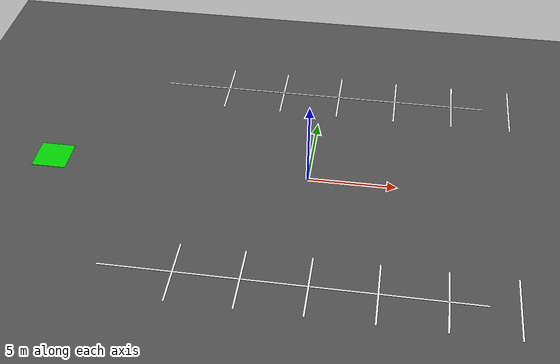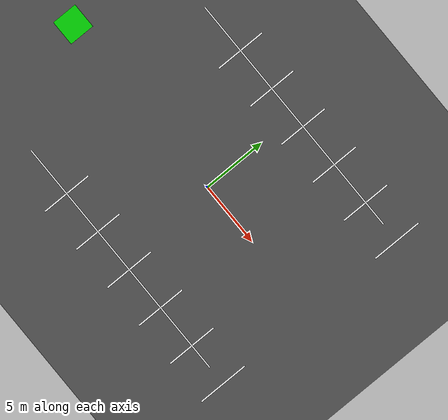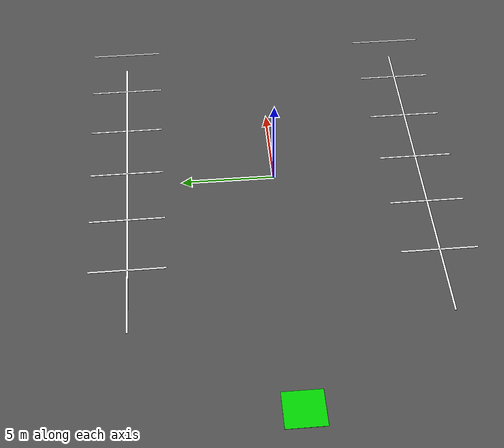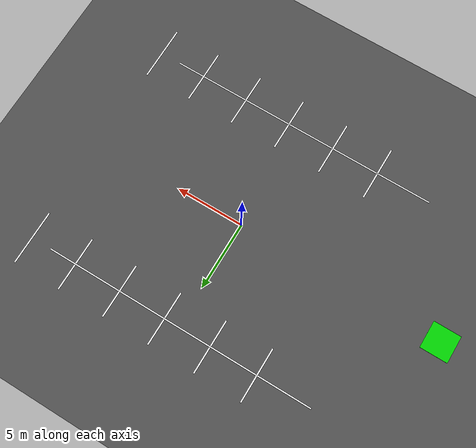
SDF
<?xml version="1.0" ?>
<sdf version="1.6">
  <world name="parking_lot_a">

    <!-- Light and physics -->
    <include>
      <uri>model://sun</uri>
    </include>

    <physics type="ode">
      <real_time_update_rate>1000</real_time_update_rate>
      <max_step_size>0.001</max_step_size>
    </physics>

    <!-- Ground plane -->
    <model name="ground_plane">
      <static>true</static>
      <link name="link">
        <collision name="collision">
          <geometry>
            <plane>
              <normal>0 0 1</normal>
              <size>40 40</size>
            </plane>
          </geometry>
          <surface>
            <friction>
              <ode>
                <mu>1.0</mu>
                <mu2>1.0</mu2>
              </ode>
            </friction>
          </surface>
        </collision>
        <visual name="visual">
          <geometry>
            <plane>
              <normal>0 0 1</normal>
              <size>40 40</size>
            </plane>
          </geometry>
          <material>
            <ambient>0.3 0.3 0.3 1</ambient>  <!-- asphalt gray -->
            <diffuse>0.3 0.3 0.3 1</diffuse>
          </material>
        </visual>
      </link>
    </model>

    <!-- Painted parking lines (white) -->
    <!-- Each bay is just a thin rectangular visual line -->
    <model name="parking_lines">
      <static>true</static>
      <link name="link">
        <!-- Horizontal lanes (white lines) -->
        <visual name="lane_line1">
          <pose>0 8 0 0 0 0</pose>
          <geometry>
            <box><size>20 0.1 0.01</size></box>
          </geometry>
          <material><diffuse>1 1 1 1</diffuse></material>
        </visual>
        <visual name="lane_line2">
          <pose>0 -8 0 0 0 0</pose>
          <geometry>
            <box><size>20 0.1 0.01</size></box>
          </geometry>
          <material><diffuse>1 1 1 1</diffuse></material>
        </visual>

        <!-- Vertical dividers (six bays per row) -->
        <!-- Top row -->
        <visual name="divider_A1"><pose>-6 8 0 0 0 0</pose><geometry><box><size>0.1 4 0.01</size></box></geometry><material><diffuse>1 1 1 1</diffuse></material></visual>
        <visual name="divider_A2"><pose>-2.5 8 0 0 0 0</pose><geometry><box><size>0.1 4 0.01</size></box></geometry><material><diffuse>1 1 1 1</diffuse></material></visual>
        <visual name="divider_A3"><pose>1 8 0 0 0 0</pose><geometry><box><size>0.1 4 0.01</size></box></geometry><material><diffuse>1 1 1 1</diffuse></material></visual>
        <visual name="divider_A4"><pose>4.5 8 0 0 0 0</pose><geometry><box><size>0.1 4 0.01</size></box></geometry><material><diffuse>1 1 1 1</diffuse></material></visual>
        <visual name="divider_A5"><pose>8 8 0 0 0 0</pose><geometry><box><size>0.1 4 0.01</size></box></geometry><material><diffuse>1 1 1 1</diffuse></material></visual>
        <visual name="divider_A6"><pose>11.5 8 0 0 0 0</pose><geometry><box><size>0.1 4 0.01</size></box></geometry><material><diffuse>1 1 1 1</diffuse></material></visual>

        <!-- Bottom row -->
        <visual name="divider_B1"><pose>-6 -8 0 0 0 0</pose><geometry><box><size>0.1 4 0.01</size></box></geometry><material><diffuse>1 1 1 1</diffuse></material></visual>
        <visual name="divider_B2"><pose>-2.5 -8 0 0 0 0</pose><geometry><box><size>0.1 4 0.01</size></box></geometry><material><diffuse>1 1 1 1</diffuse></material></visual>
        <visual name="divider_B3"><pose>1 -8 0 0 0 0</pose><geometry><box><size>0.1 4 0.01</size></box></geometry><material><diffuse>1 1 1 1</diffuse></material></visual>
        <visual name="divider_B4"><pose>4.5 -8 0 0 0 0</pose><geometry><box><size>0.1 4 0.01</size></box></geometry><material><diffuse>1 1 1 1</diffuse></material></visual>
        <visual name="divider_B5"><pose>8 -8 0 0 0 0</pose><geometry><box><size>0.1 4 0.01</size></box></geometry><material><diffuse>1 1 1 1</diffuse></material></visual>
        <visual name="divider_B6"><pose>11.5 -8 0 0 0 0</pose><geometry><box><size>0.1 4 0.01</size></box></geometry><material><diffuse>1 1 1 1</diffuse></material></visual>
      </link>
    </model>

    <!-- Optional green entry point -->
    <model name="entrance_marker">
      <static>true</static>
      <link name="link">
        <visual name="entrance_visual">
          <pose>-15 0 0 0 0 0</pose>
          <geometry><box><size>2 2 0.01</size></box></geometry>
          <material><diffuse>0 0.8 0 1</diffuse></material>
        </visual>
      </link>
    </model>

  </world>
</sdf>
